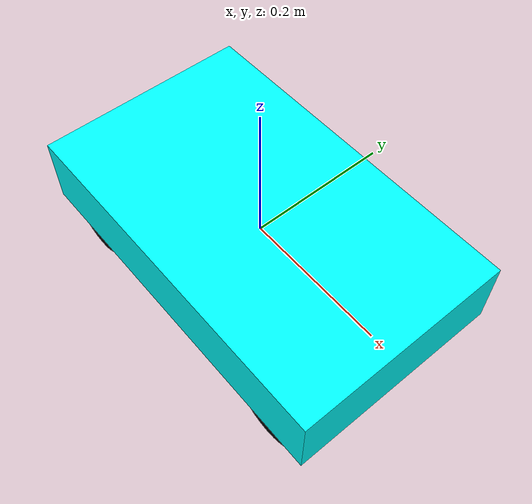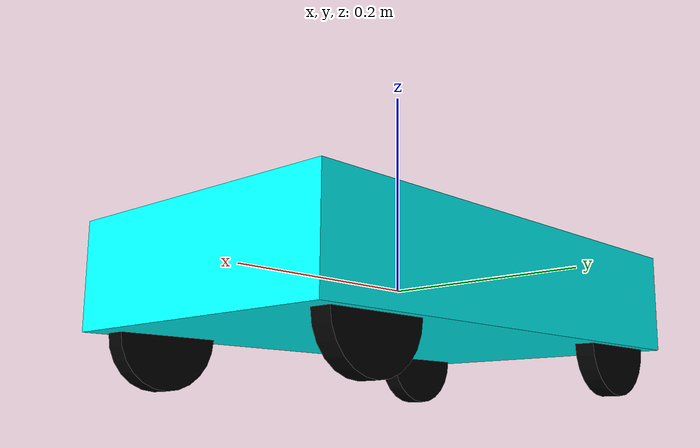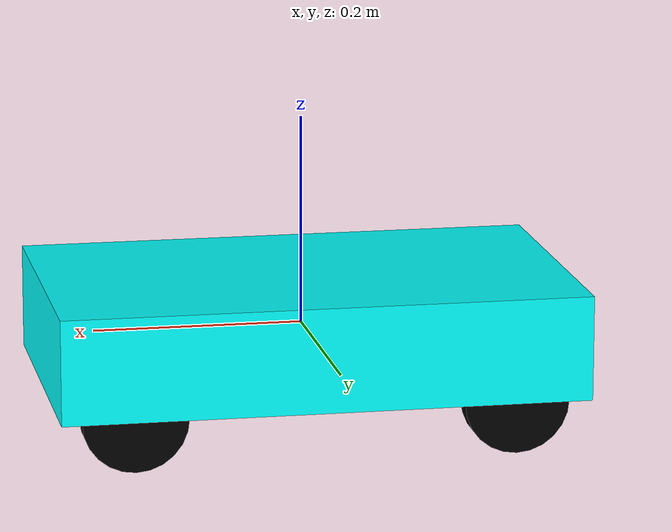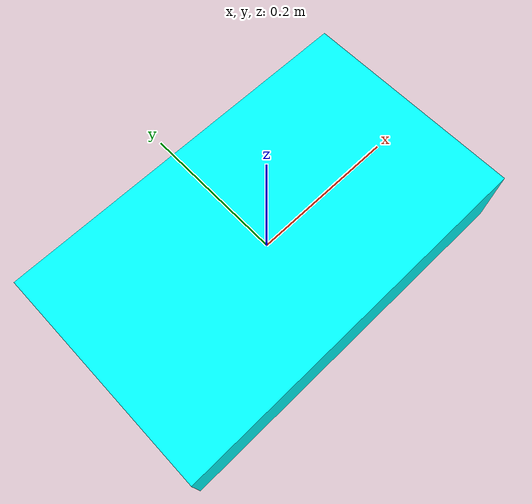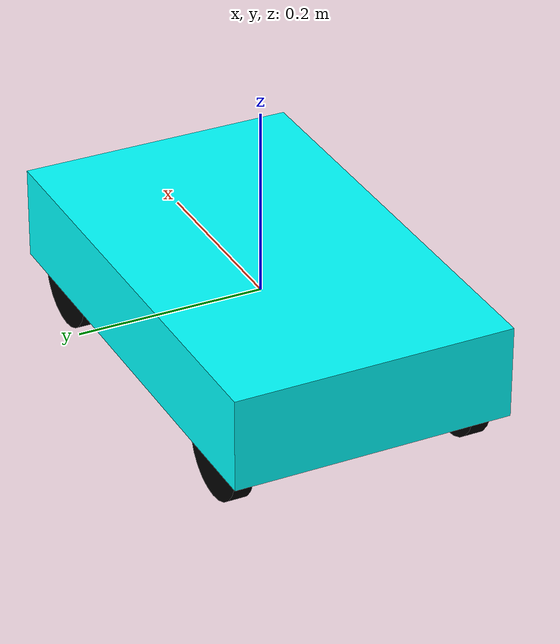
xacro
<?xml version="1.0"?>
<robot xmlns:xacro="http://ros.org/wiki/xacro" name="four_wheel_robot">

<!-- USEFUL CONSTANTS -->
<!-- size = x y z -->
<xacro:property name="robot_size" value="0.5 0.3 0.1"/>
<xacro:property name="robot_mass" value="5.0"/>
<xacro:property name="wheel_x" value="0.18"/>
<xacro:property name="wheel_y" value="0.13"/>
<xacro:property name="wheel_z" value="-0.05"/>
<xacro:property name="origin" value="0 0 0"/>

  <link name="world"/>

  <link name="base_link">
    <visual>
      <geometry>
        <box size="${robot_size}"/>
      </geometry>
      <material name="teal">
        <color rgba="0 1 1 1"/>
      </material>
    </visual>
    <collision>
      <geometry>
        <box size="${robot_size}"/>
      </geometry>
    </collision>
    <inertial>
      <mass value="${robot_mass}"/>
      <origin xyz="${origin}" rpy="${origin}"/>
      <inertia
        ixx="0.1" ixy="0.0" ixz="0.0"
        iyy="0.1" iyz="0.0"
        izz="0.1"/>
    </inertial>
  </link>

  <!-- Include the wheel macro -->
  <xacro:include filename="wheel.xacro"/>

  <!-- Instantiate wheels -->
  <xacro:wheel name="wheel_fl" parent_link="base_link" xyz="${wheel_x} ${wheel_y} ${wheel_z}"/>
  <xacro:wheel name="wheel_fr" parent_link="base_link" xyz="${wheel_x} ${-wheel_y} ${wheel_z}"/>
  <xacro:wheel name="wheel_rl" parent_link="base_link" xyz="${-wheel_x} ${wheel_y} ${wheel_z}"/>
  <xacro:wheel name="wheel_rr" parent_link="base_link" xyz="${-wheel_x} ${-wheel_y} ${wheel_z}"/>

  <joint name="base_to_world" type="fixed">
    <parent link="world"/>
    <child link="base_link"/>
    <origin rpy="${origin}" xyz="${origin}"/>
  </joint>

</robot>

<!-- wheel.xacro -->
<robot xmlns:xacro="http://ros.org/wiki/xacro" name="wheel">

<xacro:property name="wheel_len" value="0.02"/>
<xacro:property name="wheel_rad" value="0.05"/>

  <xacro:macro name="wheel" params="name parent_link xyz">
    <link name="${name}">
      <visual>
        <origin xyz="0 0 0" rpy="1.5708 0 0"/>
        <geometry>
          <cylinder radius="${wheel_rad}" length="${wheel_len}"/>
        </geometry>
        <material name="black">
          <color rgba="0 0 0 1"/>
        </material>
      </visual>
      <collision>
        <origin xyz="0 0 0" rpy="1.5708 0 0"/>
        <geometry>
          <cylinder radius="${wheel_rad}" length="${wheel_len}"/>
        </geometry>
      </collision>
      <inertial>
        <mass value="0.2"/>
        <origin xyz="0 0 0" rpy="0 0 0"/>
        <inertia
          ixx="0.001" ixy="0.0" ixz="0.0"
          iyy="0.001" iyz="0.0"
          izz="0.001"/>
      </inertial>
    </link>

    <joint name="joint_${name}" type="continuous">
      <parent link="${parent_link}"/>
      <child link="${name}"/>
      <origin xyz="${xyz}" rpy="0 0 0"/>
      <axis xyz="0 1 0"/>
    </joint>
  </xacro:macro>

</robot>
